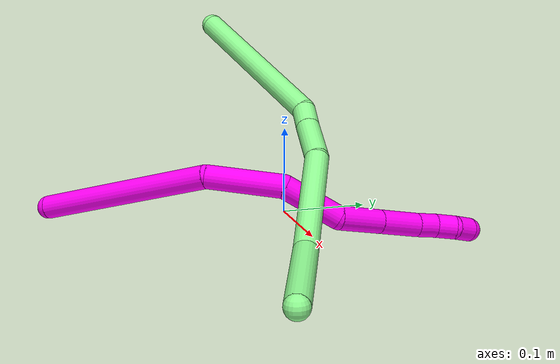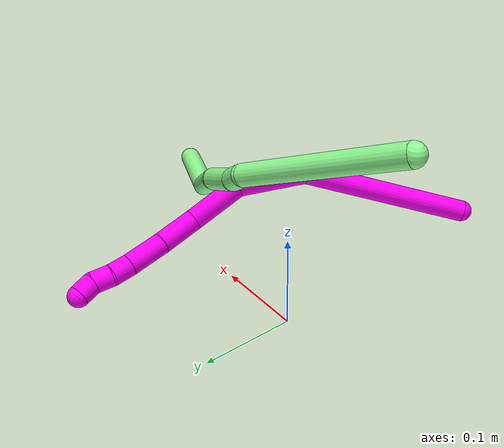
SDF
<sdf version="1.7">
 <world name="default">
  <model name="photoneo_s_sensor">
   <static>1</static>
   <pose>0 0 2 1.57079 1.57079 3.14159</pose>
   <link name="link">
    <inertial><mass>0.1</mass></inertial>
    <sensor name="sensor" type="depth">
     <update_rate>30</update_rate>
     <camera>
      <horizontal_fov>1.22</horizontal_fov>
      <image><width>1920</width><height>1200</height><format>B8G8R8</format></image>
      <clip><near>0.1</near><far>4</far></clip>
      <depth_camera><output>points</output></depth_camera>
     </camera>
     <plugin name="camera_plugin" filename="libgazebo_ros_depth_camera.so">
      <baseline>0.2</baseline>
      <alwaysOn>1</alwaysOn>
      <updateRate>0.0</updateRate>
      <cameraName>camera_ir</cameraName>
      <imageTopicName>/camera/color/image_raw</imageTopicName>
      <cameraInfoTopicName>/camera/color/camera_info</cameraInfoTopicName>
      <depthImageTopicName>/camera/depth/image_raw</depthImageTopicName>
      <depthImageCameraInfoTopicName>/camera/depth/camera_info</depthImageCameraInfoTopicName>
      <pointCloudTopicName>/camera/depth/points</pointCloudTopicName>
      <frameName>fr_optical</frameName>
      <pointCloudCutoff>0.1</pointCloudCutoff>
      <pointCloudCutoffMax>2.0</pointCloudCutoffMax>
      <distortionK1>0</distortionK1>
      <distortionK2>0</distortionK2>
      <distortionK3>0</distortionK3>
      <distortionT1>0</distortionT1>
      <distortionT2>0</distortionT2>
      <CxPrime>0</CxPrime>
      <Cx>0</Cx>
      <Cy>0</Cy>
      <focalLength>0</focalLength>
      <hackBaseline>0</hackBaseline>
     </plugin>
    </sensor>
   </link>
  </model>
  <model name="bin">
   <static>1</static>
   <link name="bottom">
    <collision name="collision-bottom">
     <pose>0 0 -0.01 0 -0 0</pose>
     <geometry><box><size>0.8 0.6 0.02</size></box></geometry>
     <surface>
      <friction><ode><mu>100</mu><mu2>100</mu2></ode></friction>
      <contact><collide_bitmask>65535</collide_bitmask></contact>
     </surface>
    </collision>
   </link>
   <link name="west_wall">
    <collision name="collision-west_wall">
     <pose>-0.41 0 0.1 0 -0 0</pose>
     <geometry><box><size>0.02 0.6 0.2</size></box></geometry>
     <surface>
      <friction><ode><mu>100</mu><mu2>100</mu2></ode></friction>
      <contact><collide_bitmask>65535</collide_bitmask></contact>
     </surface>
    </collision>
   </link>
   <link name="east_wall">
    <collision name="collision-east_wall">
     <pose>0.41 0 0.1 0 -0 0</pose>
     <geometry><box><size>0.02 0.6 0.2</size></box></geometry>
     <surface>
      <friction><ode><mu>100</mu><mu2>100</mu2></ode></friction>
      <contact><collide_bitmask>65535</collide_bitmask></contact>
     </surface>
    </collision>
   </link>
   <link name="south_wall">
    <collision name="collision-south_wall">
     <pose>0 -0.31 0.1 0 -0 0</pose>
     <geometry><box><size>0.8 0.02 0.2</size></box></geometry>
     <surface>
      <friction><ode><mu>100</mu><mu2>100</mu2></ode></friction>
      <contact><collide_bitmask>65535</collide_bitmask></contact>
     </surface>
    </collision>
   </link>
   <link name="north_wall">
    <collision name="collision-north_wall">
     <pose>0 0.31 0.1 0 -0 0</pose>
     <geometry><box><size>0.8 0.02 0.2</size></box></geometry>
     <surface>
      <friction><ode><mu>100</mu><mu2>100</mu2></ode></friction>
      <contact><collide_bitmask>65535</collide_bitmask></contact>
     </surface>
    </collision>
   </link>
  </model>
  <model name="10">
   <static>0</static>
   <link name="10">
    <collision name="collision-cylinder-e_1_1_4">
     <pose>0.055889 0.069955 -0.041142 -2.10243 0.603076 -0.996051</pose>
     <geometry><cylinder><radius>0.0125</radius><length>0.197077</length></cylinder></geometry>
     <surface>
      <friction><ode><mu>1.16</mu><mu2>1.16</mu2><slip1>0</slip1><slip2>0</slip2></ode></friction>
      <contact><ode><kp>1e+06</kp><kd>1</kd><max_vel>0</max_vel><min_depth>0.001</min_depth></ode></contact>
     </surface>
    </collision>
    <visual name="visual-cylinder-e_1_1_4">
     <pose>0.055889 0.069955 -0.041142 -2.10243 0.603076 -0.996051</pose>
     <geometry><cylinder><radius>0.0125</radius><length>0.197077</length></cylinder></geometry>
     <material><ambient>1 0 0.964706 1</ambient></material>
    </visual>
    <collision name="collision-cylinder-e_2_4_5">
     <pose>0.124984 0.163751 -0.112134 -2.46763 0.332811 -0.894087</pose>
     <geometry><cylinder><radius>0.0125</radius><length>0.080843</length></cylinder></geometry>
     <surface>
      <friction><ode><mu>1.16</mu><mu2>1.16</mu2><slip1>0</slip1><slip2>0</slip2></ode></friction>
      <contact><ode><kp>1e+06</kp><kd>1</kd><max_vel>0</max_vel><min_depth>0.001</min_depth></ode></contact>
     </surface>
    </collision>
    <visual name="visual-cylinder-e_2_4_5">
     <pose>0.124984 0.163751 -0.112134 -2.46763 0.332811 -0.894087</pose>
     <geometry><cylinder><radius>0.0125</radius><length>0.080843</length></cylinder></geometry>
     <material><ambient>1 0 0.964706 1</ambient></material>
    </visual>
    <collision name="collision-cylinder-e_3_5_6">
     <pose>0.140689 0.196133 -0.1731 -2.87375 0.077327 -0.559194</pose>
     <geometry><cylinder><radius>0.0125</radius><length>0.064727</length></cylinder></geometry>
     <surface>
      <friction><ode><mu>1.16</mu><mu2>1.16</mu2><slip1>0</slip1><slip2>0</slip2></ode></friction>
      <contact><ode><kp>1e+06</kp><kd>1</kd><max_vel>0</max_vel><min_depth>0.001</min_depth></ode></contact>
     </surface>
    </collision>
    <visual name="visual-cylinder-e_3_5_6">
     <pose>0.140689 0.196133 -0.1731 -2.87375 0.077327 -0.559194</pose>
     <geometry><cylinder><radius>0.0125</radius><length>0.064727</length></cylinder></geometry>
     <material><ambient>1 0 0.964706 1</ambient></material>
    </visual>
    <collision name="collision-cylinder-e_4_6_7">
     <pose>0.137432 0.219309 -0.222943 -2.47817 -0.237658 0.667334</pose>
     <geometry><cylinder><radius>0.0125</radius><length>0.048909</length></cylinder></geometry>
     <surface>
      <friction><ode><mu>1.16</mu><mu2>1.16</mu2><slip1>0</slip1><slip2>0</slip2></ode></friction>
      <contact><ode><kp>1e+06</kp><kd>1</kd><max_vel>0</max_vel><min_depth>0.001</min_depth></ode></contact>
     </surface>
    </collision>
    <visual name="visual-cylinder-e_4_6_7">
     <pose>0.137432 0.219309 -0.222943 -2.47817 -0.237658 0.667334</pose>
     <geometry><cylinder><radius>0.0125</radius><length>0.048909</length></cylinder></geometry>
     <material><ambient>1 0 0.964706 1</ambient></material>
    </visual>
    <collision name="collision-cylinder-e_5_7_8">
     <pose>0.127461 0.247408 -0.258757 -2.47431 -0.191314 0.540142</pose>
     <geometry><cylinder><radius>0.0125</radius><length>0.044319</length></cylinder></geometry>
     <surface>
      <friction><ode><mu>1.16</mu><mu2>1.16</mu2><slip1>0</slip1><slip2>0</slip2></ode></friction>
      <contact><ode><kp>1e+06</kp><kd>1</kd><max_vel>0</max_vel><min_depth>0.001</min_depth></ode></contact>
     </surface>
    </collision>
    <visual name="visual-cylinder-e_5_7_8">
     <pose>0.127461 0.247408 -0.258757 -2.47431 -0.191314 0.540142</pose>
     <geometry><cylinder><radius>0.0125</radius><length>0.044319</length></cylinder></geometry>
     <material><ambient>1 0 0.964706 1</ambient></material>
    </visual>
    <collision name="collision-cylinder-e_6_8_9">
     <pose>0.121606 0.268127 -0.284158 -2.42389 -0.147756 0.389634</pose>
     <geometry><cylinder><radius>0.0125</radius><length>0.02231</length></cylinder></geometry>
     <surface>
      <friction><ode><mu>1.16</mu><mu2>1.16</mu2><slip1>0</slip1><slip2>0</slip2></ode></friction>
      <contact><ode><kp>1e+06</kp><kd>1</kd><max_vel>0</max_vel><min_depth>0.001</min_depth></ode></contact>
     </surface>
    </collision>
    <visual name="visual-cylinder-e_6_8_9">
     <pose>0.121606 0.268127 -0.284158 -2.42389 -0.147756 0.389634</pose>
     <geometry><cylinder><radius>0.0125</radius><length>0.02231</length></cylinder></geometry>
     <material><ambient>1 0 0.964706 1</ambient></material>
    </visual>
    <collision name="collision-cylinder-e_7_9_10">
     <pose>0.120719 0.28219 -0.300777 -2.45513 0.070197 -0.195874</pose>
     <geometry><cylinder><radius>0.0125</radius><length>0.021534</length></cylinder></geometry>
     <surface>
      <friction><ode><mu>1.16</mu><mu2>1.16</mu2><slip1>0</slip1><slip2>0</slip2></ode></friction>
      <contact><ode><kp>1e+06</kp><kd>1</kd><max_vel>0</max_vel><min_depth>0.001</min_depth></ode></contact>
     </surface>
    </collision>
    <visual name="visual-cylinder-e_7_9_10">
     <pose>0.120719 0.28219 -0.300777 -2.45513 0.070197 -0.195874</pose>
     <geometry><cylinder><radius>0.0125</radius><length>0.021534</length></cylinder></geometry>
     <material><ambient>1 0 0.964706 1</ambient></material>
    </visual>
    <collision name="collision-cylinder-e_8_10_2">
     <pose>0.117927 0.294447 -0.316867 -2.5307 -0.357335 1.04026</pose>
     <geometry><cylinder><radius>0.0125</radius><length>0.020282</length></cylinder></geometry>
     <surface>
      <friction><ode><mu>1.16</mu><mu2>1.16</mu2><slip1>0</slip1><slip2>0</slip2></ode></friction>
      <contact><ode><kp>1e+06</kp><kd>1</kd><max_vel>0</max_vel><min_depth>0.001</min_depth></ode></contact>
     </surface>
    </collision>
    <visual name="visual-cylinder-e_8_10_2">
     <pose>0.117927 0.294447 -0.316867 -2.5307 -0.357335 1.04026</pose>
     <geometry><cylinder><radius>0.0125</radius><length>0.020282</length></cylinder></geometry>
     <material><ambient>1 0 0.964706 1</ambient></material>
    </visual>
    <collision name="collision-sphere-2">
     <pose>0.11438 0.299897 -0.324649 0 -0 0</pose>
     <geometry><sphere><radius>0.0125</radius></sphere></geometry>
     <surface>
      <friction><ode><mu>1.16</mu><mu2>1.16</mu2><slip1>0</slip1><slip2>0</slip2></ode></friction>
      <contact><ode><kp>1e+06</kp><kd>1</kd><max_vel>0</max_vel><min_depth>0.001</min_depth></ode></contact>
     </surface>
    </collision>
    <visual name="visual-sphere-2">
     <pose>0.11438 0.299897 -0.324649 0 -0 0</pose>
     <geometry><sphere><radius>0.0125</radius></sphere></geometry>
     <material><ambient>1 0 0.964706 1</ambient></material>
    </visual>
    <collision name="collision-sphere-10">
     <pose>0.121474 0.288998 -0.309085 0 -0 0</pose>
     <geometry><sphere><radius>0.0125</radius></sphere></geometry>
     <surface>
      <friction><ode><mu>1.16</mu><mu2>1.16</mu2><slip1>0</slip1><slip2>0</slip2></ode></friction>
      <contact><ode><kp>1e+06</kp><kd>1</kd><max_vel>0</max_vel><min_depth>0.001</min_depth></ode></contact>
     </surface>
    </collision>
    <visual name="visual-sphere-10">
     <pose>0.121474 0.288998 -0.309085 0 -0 0</pose>
     <geometry><sphere><radius>0.0125</radius></sphere></geometry>
     <material><ambient>1 0 0.964706 1</ambient></material>
    </visual>
    <collision name="collision-sphere-9">
     <pose>0.119963 0.275383 -0.292469 0 -0 0</pose>
     <geometry><sphere><radius>0.0125</radius></sphere></geometry>
     <surface>
      <friction><ode><mu>1.16</mu><mu2>1.16</mu2><slip1>0</slip1><slip2>0</slip2></ode></friction>
      <contact><ode><kp>1e+06</kp><kd>1</kd><max_vel>0</max_vel><min_depth>0.001</min_depth></ode></contact>
     </surface>
    </collision>
    <visual name="visual-sphere-9">
     <pose>0.119963 0.275383 -0.292469 0 -0 0</pose>
     <geometry><sphere><radius>0.0125</radius></sphere></geometry>
     <material><ambient>1 0 0.964706 1</ambient></material>
    </visual>
    <collision name="collision-sphere-4">
     <pose>0.111778 0.139909 -0.082283 0 -0 0</pose>
     <geometry><sphere><radius>0.0125</radius></sphere></geometry>
     <surface>
      <friction><ode><mu>1.16</mu><mu2>1.16</mu2><slip1>0</slip1><slip2>0</slip2></ode></friction>
      <contact><ode><kp>1e+06</kp><kd>1</kd><max_vel>0</max_vel><min_depth>0.001</min_depth></ode></contact>
     </surface>
    </collision>
    <visual name="visual-sphere-4">
     <pose>0.111778 0.139909 -0.082283 0 -0 0</pose>
     <geometry><sphere><radius>0.0125</radius></sphere></geometry>
     <material><ambient>1 0 0.964706 1</ambient></material>
    </visual>
    <collision name="collision-sphere-1">
     <geometry><sphere><radius>0.0125</radius></sphere></geometry>
     <surface>
      <friction><ode><mu>1.16</mu><mu2>1.16</mu2><slip1>0</slip1><slip2>0</slip2></ode></friction>
      <contact><ode><kp>1e+06</kp><kd>1</kd><max_vel>0</max_vel><min_depth>0.001</min_depth></ode></contact>
     </surface>
    </collision>
    <visual name="visual-sphere-1">
     <geometry><sphere><radius>0.0125</radius></sphere></geometry>
     <material><ambient>1 0 0.964706 1</ambient></material>
    </visual>
    <collision name="collision-sphere-8">
     <pose>0.123248 0.260871 -0.275846 0 -0 0</pose>
     <geometry><sphere><radius>0.0125</radius></sphere></geometry>
     <surface>
      <friction><ode><mu>1.16</mu><mu2>1.16</mu2><slip1>0</slip1><slip2>0</slip2></ode></friction>
      <contact><ode><kp>1e+06</kp><kd>1</kd><max_vel>0</max_vel><min_depth>0.001</min_depth></ode></contact>
     </surface>
    </collision>
    <visual name="visual-sphere-8">
     <pose>0.123248 0.260871 -0.275846 0 -0 0</pose>
     <geometry><sphere><radius>0.0125</radius></sphere></geometry>
     <material><ambient>1 0 0.964706 1</ambient></material>
    </visual>
    <collision name="collision-sphere-5">
     <pose>0.138189 0.187593 -0.141984 0 -0 0</pose>
     <geometry><sphere><radius>0.0125</radius></sphere></geometry>
     <surface>
      <friction><ode><mu>1.16</mu><mu2>1.16</mu2><slip1>0</slip1><slip2>0</slip2></ode></friction>
      <contact><ode><kp>1e+06</kp><kd>1</kd><max_vel>0</max_vel><min_depth>0.001</min_depth></ode></contact>
     </surface>
    </collision>
    <visual name="visual-sphere-5">
     <pose>0.138189 0.187593 -0.141984 0 -0 0</pose>
     <geometry><sphere><radius>0.0125</radius></sphere></geometry>
     <material><ambient>1 0 0.964706 1</ambient></material>
    </visual>
    <collision name="collision-sphere-6">
     <pose>0.143189 0.204672 -0.204217 0 -0 0</pose>
     <geometry><sphere><radius>0.0125</radius></sphere></geometry>
     <surface>
      <friction><ode><mu>1.16</mu><mu2>1.16</mu2><slip1>0</slip1><slip2>0</slip2></ode></friction>
      <contact><ode><kp>1e+06</kp><kd>1</kd><max_vel>0</max_vel><min_depth>0.001</min_depth></ode></contact>
     </surface>
    </collision>
    <visual name="visual-sphere-6">
     <pose>0.143189 0.204672 -0.204217 0 -0 0</pose>
     <geometry><sphere><radius>0.0125</radius></sphere></geometry>
     <material><ambient>1 0 0.964706 1</ambient></material>
    </visual>
    <collision name="collision-sphere-7">
     <pose>0.131675 0.233945 -0.241669 0 -0 0</pose>
     <geometry><sphere><radius>0.0125</radius></sphere></geometry>
     <surface>
      <friction><ode><mu>1.16</mu><mu2>1.16</mu2><slip1>0</slip1><slip2>0</slip2></ode></friction>
      <contact><ode><kp>1e+06</kp><kd>1</kd><max_vel>0</max_vel><min_depth>0.001</min_depth></ode></contact>
     </surface>
    </collision>
    <visual name="visual-sphere-7">
     <pose>0.131675 0.233945 -0.241669 0 -0 0</pose>
     <geometry><sphere><radius>0.0125</radius></sphere></geometry>
     <material><ambient>1 0 0.964706 1</ambient></material>
    </visual>
    <inertial>
     <pose>0.100599 0.158882 -0.139984 0 -0 0</pose>
     <mass>0.5</mass>
     <inertia>
      <ixx>-0.000114</ixx>
      <ixy>0</ixy>
      <ixz>0</ixz>
      <iyy>-0.000421</iyy>
      <iyz>0</iyz>
      <izz>-0.000912</izz>
     </inertia>
    </inertial>
   </link>
   <pose>0.001299 -0.271997 0.028718 0.739908 -0.182277 -0.086779</pose>
  </model>
  <model name="13">
   <static>0</static>
   <link name="13">
    <collision name="collision-cylinder-e_1_1_4">
     <pose>0.084638 0.02684 -0.040868 -2.56049 1.04695 -2.18562</pose>
     <geometry><cylinder><radius>0.0125</radius><length>0.195491</length></cylinder></geometry>
     <surface>
      <friction><ode><mu>1.16</mu><mu2>1.16</mu2><slip1>0</slip1><slip2>0</slip2></ode></friction>
      <contact><ode><kp>1e+06</kp><kd>1</kd><max_vel>0</max_vel><min_depth>0.001</min_depth></ode></contact>
     </surface>
    </collision>
    <visual name="visual-cylinder-e_1_1_4">
     <pose>0.084638 0.02684 -0.040868 -2.56049 1.04695 -2.18562</pose>
     <geometry><cylinder><radius>0.0125</radius><length>0.195491</length></cylinder></geometry>
     <material><ambient>0.564706 0.984314 0.572549 1</ambient></material>
    </visual>
    <collision name="collision-cylinder-e_2_4_5">
     <pose>0.179188 0.05227 -0.089376 2.95913 0.906048 2.77007</pose>
     <geometry><cylinder><radius>0.0125</radius><length>0.025187</length></cylinder></geometry>
     <surface>
      <friction><ode><mu>1.16</mu><mu2>1.16</mu2><slip1>0</slip1><slip2>0</slip2></ode></friction>
      <contact><ode><kp>1e+06</kp><kd>1</kd><max_vel>0</max_vel><min_depth>0.001</min_depth></ode></contact>
     </surface>
    </collision>
    <visual name="visual-cylinder-e_2_4_5">
     <pose>0.179188 0.05227 -0.089376 2.95913 0.906048 2.77007</pose>
     <geometry><cylinder><radius>0.0125</radius><length>0.025187</length></cylinder></geometry>
     <material><ambient>0.564706 0.984314 0.572549 1</ambient></material>
    </visual>
    <collision name="collision-cylinder-e_3_5_6">
     <pose>0.21208 0.047176 -0.108679 2.83563 1.08167 2.63898</pose>
     <geometry><cylinder><radius>0.0125</radius><length>0.052065</length></cylinder></geometry>
     <surface>
      <friction><ode><mu>1.16</mu><mu2>1.16</mu2><slip1>0</slip1><slip2>0</slip2></ode></friction>
      <contact><ode><kp>1e+06</kp><kd>1</kd><max_vel>0</max_vel><min_depth>0.001</min_depth></ode></contact>
     </surface>
    </collision>
    <visual name="visual-cylinder-e_3_5_6">
     <pose>0.21208 0.047176 -0.108679 2.83563 1.08167 2.63898</pose>
     <geometry><cylinder><radius>0.0125</radius><length>0.052065</length></cylinder></geometry>
     <material><ambient>0.564706 0.984314 0.572549 1</ambient></material>
    </visual>
    <collision name="collision-cylinder-e_4_6_7">
     <pose>0.279696 0.020617 -0.153882 2.54303 0.832747 1.92321</pose>
     <geometry><cylinder><radius>0.0125</radius><length>0.120674</length></cylinder></geometry>
     <surface>
      <friction><ode><mu>1.16</mu><mu2>1.16</mu2><slip1>0</slip1><slip2>0</slip2></ode></friction>
      <contact><ode><kp>1e+06</kp><kd>1</kd><max_vel>0</max_vel><min_depth>0.001</min_depth></ode></contact>
     </surface>
    </collision>
    <visual name="visual-cylinder-e_4_6_7">
     <pose>0.279696 0.020617 -0.153882 2.54303 0.832747 1.92321</pose>
     <geometry><cylinder><radius>0.0125</radius><length>0.120674</length></cylinder></geometry>
     <material><ambient>0.564706 0.984314 0.572549 1</ambient></material>
    </visual>
    <collision name="collision-cylinder-e_5_7_2">
     <pose>0.372572 -0.023543 -0.195162 1.91958 1.13185 1.47326</pose>
     <geometry><cylinder><radius>0.0125</radius><length>0.106583</length></cylinder></geometry>
     <surface>
      <friction><ode><mu>1.16</mu><mu2>1.16</mu2><slip1>0</slip1><slip2>0</slip2></ode></friction>
      <contact><ode><kp>1e+06</kp><kd>1</kd><max_vel>0</max_vel><min_depth>0.001</min_depth></ode></contact>
     </surface>
    </collision>
    <visual name="visual-cylinder-e_5_7_2">
     <pose>0.372572 -0.023543 -0.195162 1.91958 1.13185 1.47326</pose>
     <geometry><cylinder><radius>0.0125</radius><length>0.106583</length></cylinder></geometry>
     <material><ambient>0.564706 0.984314 0.572549 1</ambient></material>
    </visual>
    <collision name="collision-sphere-2">
     <pose>0.420811 -0.044827 -0.202902 0 -0 0</pose>
     <geometry><sphere><radius>0.0125</radius></sphere></geometry>
     <surface>
      <friction><ode><mu>1.16</mu><mu2>1.16</mu2><slip1>0</slip1><slip2>0</slip2></ode></friction>
      <contact><ode><kp>1e+06</kp><kd>1</kd><max_vel>0</max_vel><min_depth>0.001</min_depth></ode></contact>
     </surface>
    </collision>
    <visual name="visual-sphere-2">
     <pose>0.420811 -0.044827 -0.202902 0 -0 0</pose>
     <geometry><sphere><radius>0.0125</radius></sphere></geometry>
     <material><ambient>0.564706 0.984314 0.572549 1</ambient></material>
    </visual>
    <collision name="collision-sphere-7">
     <pose>0.324332 -0.002258 -0.187422 0 -0 0</pose>
     <geometry><sphere><radius>0.0125</radius></sphere></geometry>
     <surface>
      <friction><ode><mu>1.16</mu><mu2>1.16</mu2><slip1>0</slip1><slip2>0</slip2></ode></friction>
      <contact><ode><kp>1e+06</kp><kd>1</kd><max_vel>0</max_vel><min_depth>0.001</min_depth></ode></contact>
     </surface>
    </collision>
    <visual name="visual-sphere-7">
     <pose>0.324332 -0.002258 -0.187422 0 -0 0</pose>
     <geometry><sphere><radius>0.0125</radius></sphere></geometry>
     <material><ambient>0.564706 0.984314 0.572549 1</ambient></material>
    </visual>
    <collision name="collision-sphere-6">
     <pose>0.23506 0.043492 -0.120343 0 -0 0</pose>
     <geometry><sphere><radius>0.0125</radius></sphere></geometry>
     <surface>
      <friction><ode><mu>1.16</mu><mu2>1.16</mu2><slip1>0</slip1><slip2>0</slip2></ode></friction>
      <contact><ode><kp>1e+06</kp><kd>1</kd><max_vel>0</max_vel><min_depth>0.001</min_depth></ode></contact>
     </surface>
    </collision>
    <visual name="visual-sphere-6">
     <pose>0.23506 0.043492 -0.120343 0 -0 0</pose>
     <geometry><sphere><radius>0.0125</radius></sphere></geometry>
     <material><ambient>0.564706 0.984314 0.572549 1</ambient></material>
    </visual>
    <collision name="collision-sphere-5">
     <pose>0.1891 0.050861 -0.097016 0 -0 0</pose>
     <geometry><sphere><radius>0.0125</radius></sphere></geometry>
     <surface>
      <friction><ode><mu>1.16</mu><mu2>1.16</mu2><slip1>0</slip1><slip2>0</slip2></ode></friction>
      <contact><ode><kp>1e+06</kp><kd>1</kd><max_vel>0</max_vel><min_depth>0.001</min_depth></ode></contact>
     </surface>
    </collision>
    <visual name="visual-sphere-5">
     <pose>0.1891 0.050861 -0.097016 0 -0 0</pose>
     <geometry><sphere><radius>0.0125</radius></sphere></geometry>
     <material><ambient>0.564706 0.984314 0.572549 1</ambient></material>
    </visual>
    <collision name="collision-sphere-1">
     <geometry><sphere><radius>0.0125</radius></sphere></geometry>
     <surface>
      <friction><ode><mu>1.16</mu><mu2>1.16</mu2><slip1>0</slip1><slip2>0</slip2></ode></friction>
      <contact><ode><kp>1e+06</kp><kd>1</kd><max_vel>0</max_vel><min_depth>0.001</min_depth></ode></contact>
     </surface>
    </collision>
    <visual name="visual-sphere-1">
     <geometry><sphere><radius>0.0125</radius></sphere></geometry>
     <material><ambient>0.564706 0.984314 0.572549 1</ambient></material>
    </visual>
    <collision name="collision-sphere-4">
     <pose>0.169276 0.05368 -0.081737 0 -0 0</pose>
     <geometry><sphere><radius>0.0125</radius></sphere></geometry>
     <surface>
      <friction><ode><mu>1.16</mu><mu2>1.16</mu2><slip1>0</slip1><slip2>0</slip2></ode></friction>
      <contact><ode><kp>1e+06</kp><kd>1</kd><max_vel>0</max_vel><min_depth>0.001</min_depth></ode></contact>
     </surface>
    </collision>
    <visual name="visual-sphere-4">
     <pose>0.169276 0.05368 -0.081737 0 -0 0</pose>
     <geometry><sphere><radius>0.0125</radius></sphere></geometry>
     <material><ambient>0.564706 0.984314 0.572549 1</ambient></material>
    </visual>
    <inertial>
     <pose>0.211126 0.017997 -0.110539 0 -0 0</pose>
     <mass>0.5</mass>
     <inertia>
      <ixx>-0.000301</ixx>
      <ixy>0</ixy>
      <ixz>0</ixz>
      <iyy>0.000634</iyy>
      <iyz>0</iyz>
      <izz>-0.000854</izz>
     </inertia>
    </inertial>
   </link>
   <pose>-0.092209 -0.061685 0.212018 0.024112 -0.033787 0.009832</pose>
  </model>
 </world>
</sdf>
